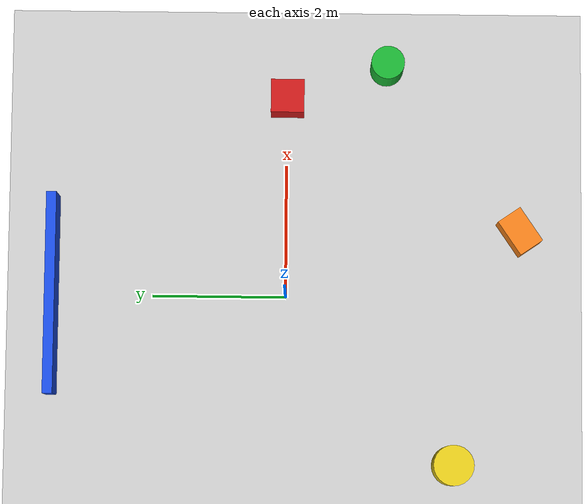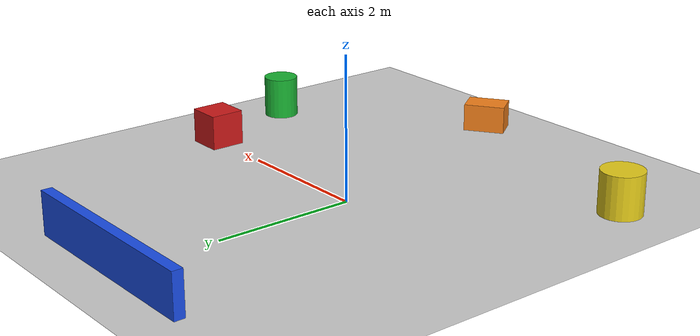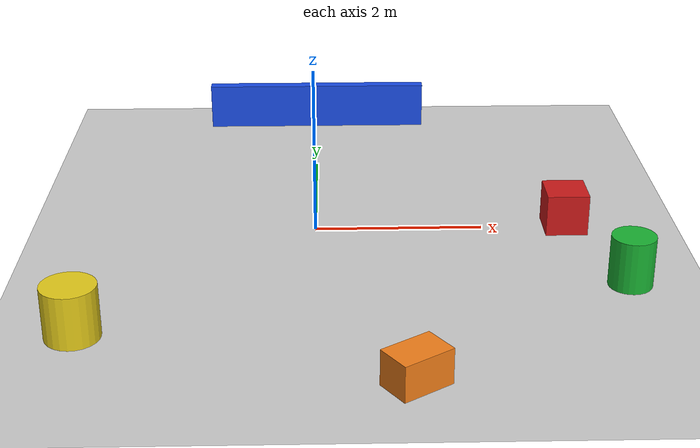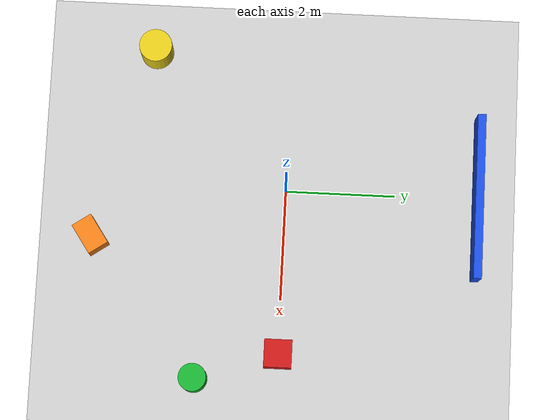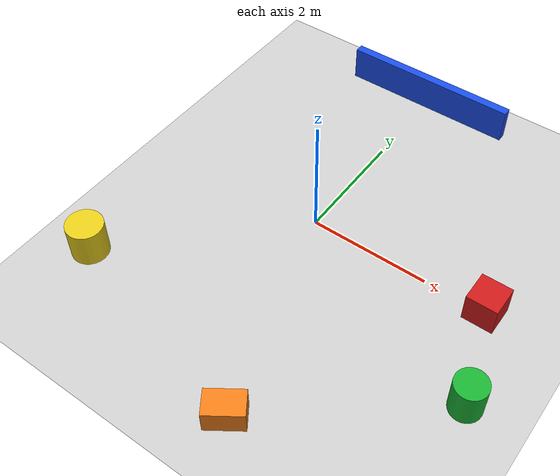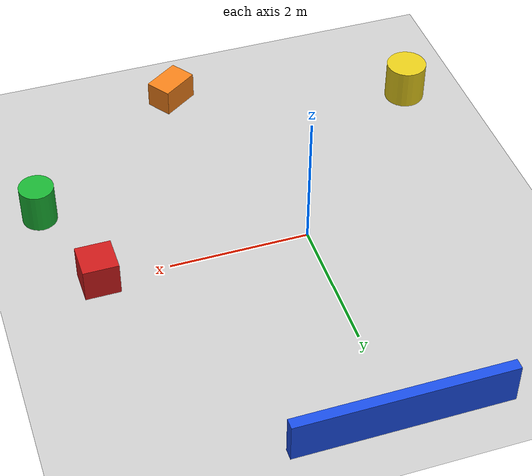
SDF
<?xml version="1.0"?>
<sdf version="1.6">
  <world name="default">

    <include><uri>model://sun</uri></include>
    <include><uri>model://ground_plane</uri></include>

    <physics type="ode">
      <max_step_size>0.001</max_step_size>
      <real_time_factor>1.0</real_time_factor>
      <real_time_update_rate>1000</real_time_update_rate>
    </physics>

    <spherical_coordinates>
      <surface_model>EARTH_WGS84</surface_model>
      <latitude_deg>38.161479</latitude_deg>
      <longitude_deg>-122.454630</longitude_deg>
      <elevation>0.0</elevation>
      <heading_deg>180</heading_deg>
    </spherical_coordinates>

    <!-- caixa vermelha à frente do robô (+X) -->
    <model name="box_red">
      <static>true</static>
      <pose>3.0 0.0 0.25 0 0 0</pose>
      <link name="link">
        <collision name="collision"><geometry><box><size>0.5 0.5 0.5</size></box></geometry></collision>
        <visual name="visual">
          <geometry><box><size>0.5 0.5 0.5</size></box></geometry>
          <material><ambient>0.8 0.1 0.1 1</ambient><diffuse>0.8 0.1 0.1 1</diffuse></material>
        </visual>
      </link>
    </model>

    <!-- cilindro verde -->
    <model name="cylinder_green">
      <static>true</static>
      <pose>3.5 -1.5 0.3 0 0 0</pose>
      <link name="link">
        <collision name="collision"><geometry><cylinder><radius>0.25</radius><length>0.6</length></cylinder></geometry></collision>
        <visual name="visual">
          <geometry><cylinder><radius>0.25</radius><length>0.6</length></cylinder></geometry>
          <material><ambient>0.1 0.7 0.2 1</ambient><diffuse>0.1 0.7 0.2 1</diffuse></material>
        </visual>
      </link>
    </model>

    <!-- parede azul ao norte (+Y) -->
    <model name="wall_blue">
      <static>true</static>
      <pose>0.0 3.5 0.3 0 0 0</pose>
      <link name="link">
        <collision name="collision"><geometry><box><size>3.0 0.15 0.6</size></box></geometry></collision>
        <visual name="visual">
          <geometry><box><size>3.0 0.15 0.6</size></box></geometry>
          <material><ambient>0.1 0.3 0.9 1</ambient><diffuse>0.1 0.3 0.9 1</diffuse></material>
        </visual>
      </link>
    </model>

    <!-- cilindro amarelo ao sul-oeste -->
    <model name="cylinder_yellow">
      <static>true</static>
      <pose>-2.5 -2.5 0.3 0 0 0</pose>
      <link name="link">
        <collision name="collision"><geometry><cylinder><radius>0.3</radius><length>0.6</length></cylinder></geometry></collision>
        <visual name="visual">
          <geometry><cylinder><radius>0.3</radius><length>0.6</length></cylinder></geometry>
          <material><ambient>0.9 0.8 0.1 1</ambient><diffuse>0.9 0.8 0.1 1</diffuse></material>
        </visual>
      </link>
    </model>

    <!-- caixa laranja ao sul -->
    <model name="box_orange">
      <static>true</static>
      <pose>1.0 -3.5 0.2 0 0 0.6</pose>
      <link name="link">
        <collision name="collision"><geometry><box><size>0.6 0.4 0.4</size></box></geometry></collision>
        <visual name="visual">
          <geometry><box><size>0.6 0.4 0.4</size></box></geometry>
          <material><ambient>0.95 0.5 0.1 1</ambient><diffuse>0.95 0.5 0.1 1</diffuse></material>
        </visual>
      </link>
    </model>

  </world>
</sdf>
